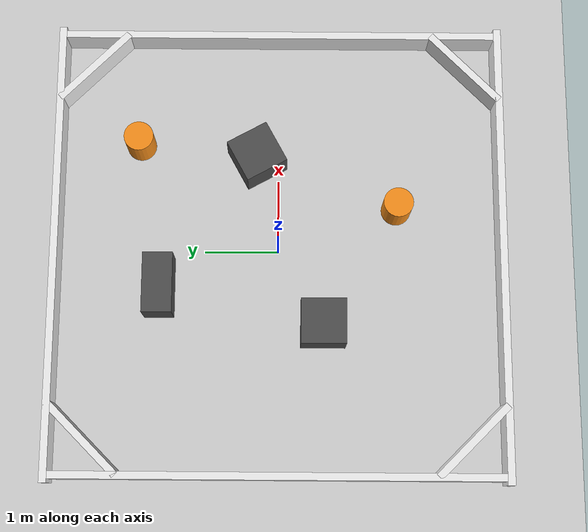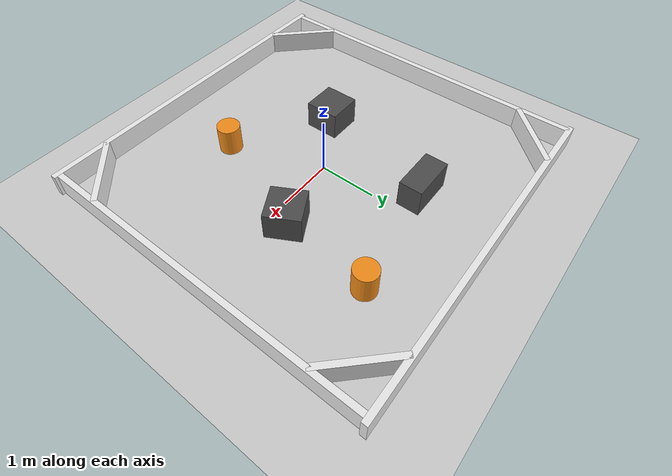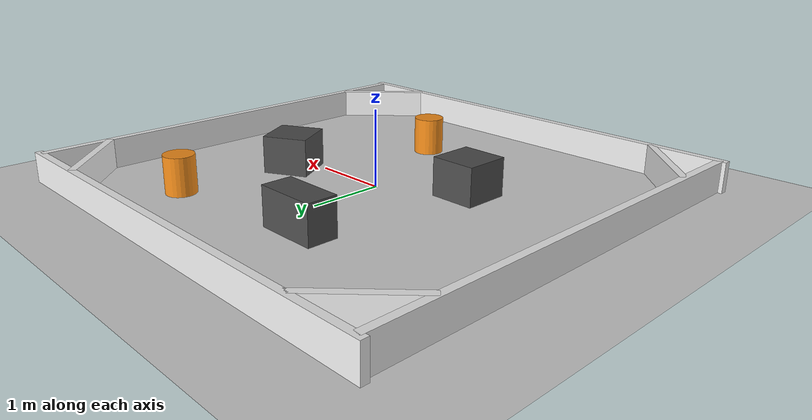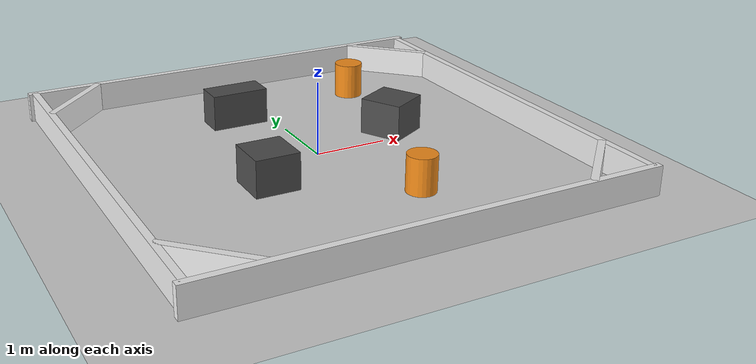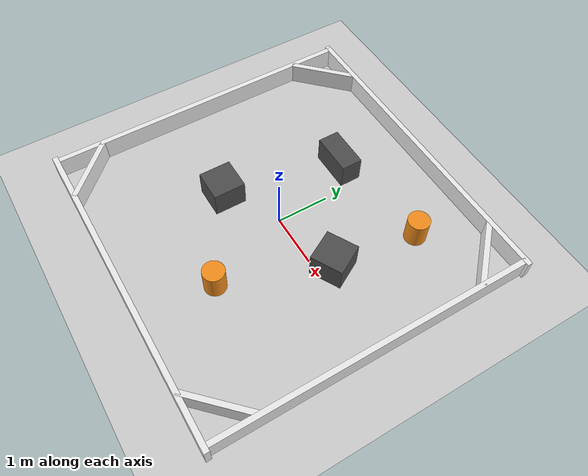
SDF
<?xml version="1.0"?>
<sdf version="1.6">
  <world name="obstacle_room">
    <include><uri>model://sun</uri></include>
    <include><uri>model://ground_plane</uri></include>

    <physics type="ode">
      <max_step_size>0.001</max_step_size>
      <real_time_factor>1</real_time_factor>
      <real_time_update_rate>1000</real_time_update_rate>
    </physics>

    <gui>
      <camera name="user_camera">
        <pose>0 -6.5 6.5 0 0.8 1.5708</pose>
      </camera>
    </gui>

    <model name="wall_north">
      <static>true</static>
      <pose>0 3.0 0.2 0 0 0</pose>
      <link name="link">
        <collision name="collision"><geometry><box><size>6.2 0.1 0.4</size></box></geometry></collision>
        <visual name="visual"><geometry><box><size>6.2 0.1 0.4</size></box></geometry>
          <material><script><uri>file://media/materials/scripts/gazebo.material</uri><name>Gazebo/White</name></script></material></visual>
      </link>
    </model>
    <model name="wall_south">
      <static>true</static>
      <pose>0 -3.0 0.2 0 0 0</pose>
      <link name="link">
        <collision name="collision"><geometry><box><size>6.2 0.1 0.4</size></box></geometry></collision>
        <visual name="visual"><geometry><box><size>6.2 0.1 0.4</size></box></geometry>
          <material><script><uri>file://media/materials/scripts/gazebo.material</uri><name>Gazebo/White</name></script></material></visual>
      </link>
    </model>
    <model name="wall_east">
      <static>true</static>
      <pose>3.0 0 0.2 0 0 0</pose>
      <link name="link">
        <collision name="collision"><geometry><box><size>0.1 6.0 0.4</size></box></geometry></collision>
        <visual name="visual"><geometry><box><size>0.1 6.0 0.4</size></box></geometry>
          <material><script><uri>file://media/materials/scripts/gazebo.material</uri><name>Gazebo/White</name></script></material></visual>
      </link>
    </model>
    <model name="wall_west">
      <static>true</static>
      <pose>-3.0 0 0.2 0 0 0</pose>
      <link name="link">
        <collision name="collision"><geometry><box><size>0.1 6.0 0.4</size></box></geometry></collision>
        <visual name="visual"><geometry><box><size>0.1 6.0 0.4</size></box></geometry>
          <material><script><uri>file://media/materials/scripts/gazebo.material</uri><name>Gazebo/White</name></script></material></visual>
      </link>
    </model>
    <model name="corner_ne">
      <static>true</static>
      <pose>2.54 2.54 0.2 0 0 -0.7854</pose>
      <link name="link">
        <collision name="collision"><geometry><box><size>1.3 0.1 0.4</size></box></geometry></collision>
        <visual name="visual"><geometry><box><size>1.3 0.1 0.4</size></box></geometry>
          <material><script><uri>file://media/materials/scripts/gazebo.material</uri><name>Gazebo/White</name></script></material></visual>
      </link>
    </model>
    <model name="corner_nw">
      <static>true</static>
      <pose>-2.54 2.54 0.2 0 0 0.7854</pose>
      <link name="link">
        <collision name="collision"><geometry><box><size>1.3 0.1 0.4</size></box></geometry></collision>
        <visual name="visual"><geometry><box><size>1.3 0.1 0.4</size></box></geometry>
          <material><script><uri>file://media/materials/scripts/gazebo.material</uri><name>Gazebo/White</name></script></material></visual>
      </link>
    </model>
    <model name="corner_sw">
      <static>true</static>
      <pose>-2.54 -2.54 0.2 0 0 -0.7854</pose>
      <link name="link">
        <collision name="collision"><geometry><box><size>1.3 0.1 0.4</size></box></geometry></collision>
        <visual name="visual"><geometry><box><size>1.3 0.1 0.4</size></box></geometry>
          <material><script><uri>file://media/materials/scripts/gazebo.material</uri><name>Gazebo/White</name></script></material></visual>
      </link>
    </model>
    <model name="corner_se">
      <static>true</static>
      <pose>2.54 -2.54 0.2 0 0 0.7854</pose>
      <link name="link">
        <collision name="collision"><geometry><box><size>1.3 0.1 0.4</size></box></geometry></collision>
        <visual name="visual"><geometry><box><size>1.3 0.1 0.4</size></box></geometry>
          <material><script><uri>file://media/materials/scripts/gazebo.material</uri><name>Gazebo/White</name></script></material></visual>
      </link>
    </model>
    <model name="box_1">
      <static>true</static>
      <pose>-1.0 -0.6 0.25 0 0 0.0</pose>
      <link name="link">
        <collision name="collision"><geometry><box><size>0.6 0.6 0.5</size></box></geometry></collision>
        <visual name="visual"><geometry><box><size>0.6 0.6 0.5</size></box></geometry>
          <material><script><uri>file://media/materials/scripts/gazebo.material</uri><name>Gazebo/DarkGrey</name></script></material></visual>
      </link>
    </model>
    <model name="box_2">
      <static>true</static>
      <pose>1.3 0.3 0.25 0 0 0.5</pose>
      <link name="link">
        <collision name="collision"><geometry><box><size>0.6 0.6 0.5</size></box></geometry></collision>
        <visual name="visual"><geometry><box><size>0.6 0.6 0.5</size></box></geometry>
          <material><script><uri>file://media/materials/scripts/gazebo.material</uri><name>Gazebo/DarkGrey</name></script></material></visual>
      </link>
    </model>
    <model name="box_3">
      <static>true</static>
      <pose>-0.5 1.6 0.25 0 0 0.0</pose>
      <link name="link">
        <collision name="collision"><geometry><box><size>0.8 0.4 0.5</size></box></geometry></collision>
        <visual name="visual"><geometry><box><size>0.8 0.4 0.5</size></box></geometry>
          <material><script><uri>file://media/materials/scripts/gazebo.material</uri><name>Gazebo/DarkGrey</name></script></material></visual>
      </link>
    </model>
    <model name="barrel_1">
      <static>true</static>
      <pose>0.6 -1.6 0.25 0 0 0</pose>
      <link name="link">
        <collision name="collision"><geometry><cylinder><radius>0.2</radius><length>0.5</length></cylinder></geometry></collision>
        <visual name="visual"><geometry><cylinder><radius>0.2</radius><length>0.5</length></cylinder></geometry>
          <material><script><uri>file://media/materials/scripts/gazebo.material</uri><name>Gazebo/Orange</name></script></material></visual>
      </link>
    </model>
    <model name="barrel_2">
      <static>true</static>
      <pose>1.5 1.9 0.25 0 0 0</pose>
      <link name="link">
        <collision name="collision"><geometry><cylinder><radius>0.2</radius><length>0.5</length></cylinder></geometry></collision>
        <visual name="visual"><geometry><cylinder><radius>0.2</radius><length>0.5</length></cylinder></geometry>
          <material><script><uri>file://media/materials/scripts/gazebo.material</uri><name>Gazebo/Orange</name></script></material></visual>
      </link>
    </model>
  </world>
</sdf>
